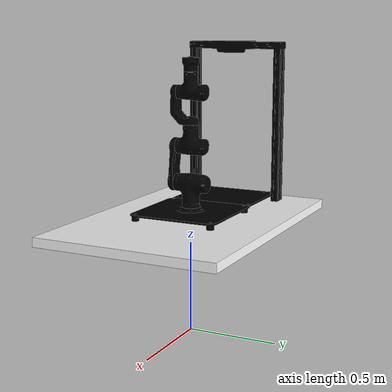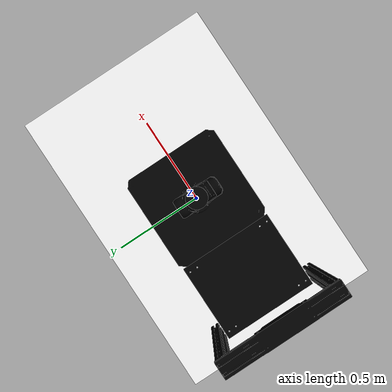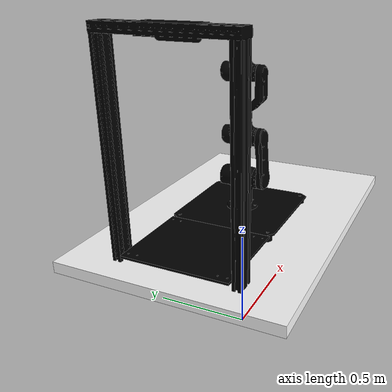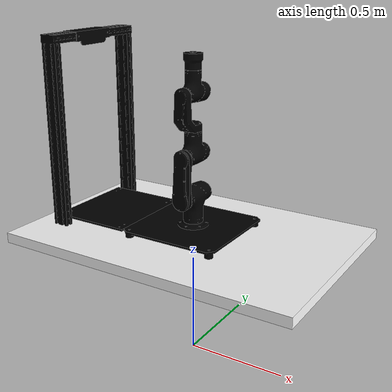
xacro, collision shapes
<?xml version="1.0"?>
<robot xmlns:xacro="http://ros.org/wiki/xacro"
       name="mara" >

  <!-- common stuff -->
  <xacro:include filename="$(find mara_description)/urdf/common.gazebo.xacro" />

  <!-- mara -->
  <xacro:include filename="$(find mara_description)/urdf/mara_nogripper.urdf.xacro" />

  <xacro:include filename="$(find mara_description)/urdf/camera_top.urdf.xacro" />

  <xacro:include filename="$(find mara_description)/urdf/table.urdf.xacro" />

  <!-- arm -->
  <xacro:mara_robot prefix="" joint_limited="false"/>
  <xacro:mara_camera_top prefix="" />
  <xacro:table prefix="" />

  <link name="world" />

  <joint name="world_to_table_joint" type="fixed">
    <origin rpy="0 0 0" xyz="0 0 0.02"/>
    <parent link="world"/>
    <child link="table"/>
  </joint>

  <joint name="table_to_base_joint" type="fixed">
    <origin rpy="0 0 0" xyz="0 0 0.65"/>
    <parent link="table"/>
    <child link="base_link"/>
  </joint>

</robot>

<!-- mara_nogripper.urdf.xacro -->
<robot xmlns:xacro="http://ros.org/wiki/xacro">

<!--
  Author: Felix Messmer
-->

  <xacro:include filename="$(find mara_description)/urdf/mara.transmission.xacro" />
  <xacro:include filename="$(find mara_description)/urdf/mara.gazebo.xacro" />

  <xacro:macro name="mara_robot"  params="prefix joint_limited">

    <link name="${prefix}base_link">
      <inertial>
        <origin rpy="0 0 0" xyz="8.625E-08 -4.6583E-06 0.03145"/>
        <mass value="7.033"/>
        <inertia ixx="0.1478344" ixy="-0.00001" ixz="0.0" iyy="0.14782335" iyz="0.0" izz="0.29471799"/>
      </inertial>
      <visual>
        <origin rpy="0 0 0" xyz="0 0 0"/>
        <geometry>
          <mesh filename="package://mara_description/meshes/H-ROS_Robot_BASE.stl" scale="0.001 0.001 0.001"/>
        </geometry>
        <material name="Gazebo/Grey">
          <color rgba="0. 0. 0. 1"/>
        </material>
      </visual>
      <collision>
        <origin rpy="0 0 0" xyz="0 0 0"/>
        <geometry>
          <mesh filename="package://mara_description/meshes/H-ROS_Robot_BASE.stl" scale="0.001 0.001 0.001"/>
        </geometry>
      </collision>
    </link>
    <gazebo reference="${prefix}base_link">
      <material>Gazebo/Grey</material>
      <selfCollide>False</selfCollide>
    </gazebo>

    <link name="${prefix}motor1_link">
      <inertial>
        <origin rpy="0 0 0" xyz="8.625E-08 -4.6583E-06 0.03145"/>
        <mass value="5.8"/>
        <inertia ixx="0.10105893" ixy="0.000211" ixz="-0.004" iyy="0.09386624" iyz="-0.01698537" izz="0.01449937"/>
      </inertial>
      <visual>
        <origin rpy="0 0 0" xyz="0 0 0"/>
        <geometry>
          <mesh filename="package://mara_description/meshes/H-ROS_Robot_mara1.stl" scale="0.001 0.001 0.001"/>
        </geometry>
        <material name="Gazebo/White">
          <color rgba="0. 0. 0. 1"/>
        </material>
      </visual>
      <collision>
        <origin rpy="0 0 0" xyz="0 0 0"/>
        <geometry>
          <mesh filename="package://mara_description/meshes/H-ROS_Robot_mara1.stl" scale="0.001 0.001 0.001"/>
        </geometry>
      </collision>
    </link>
    <gazebo reference="${prefix}motor1_link">
      <material>Gazebo/White</material>
      <selfCollide>False</selfCollide>
    </gazebo>

    <link name="${prefix}motor2_link">
      <inertial>
        <origin rpy="0 0 0" xyz="8.625E-08 -4.6583E-06 0.03145"/>
        <mass value="1.03237"/>
        <inertia ixx="0.014865226" ixy="0.0" ixz="0.0" iyy="0.01557" iyz="0.00071" izz="0.00092"/>
      </inertial>
      <visual>
        <origin rpy="0 0 0" xyz="0 0 0"/>
        <geometry>
          <mesh filename="package://mara_description/meshes/H-ROS_Robot_LINK1.stl" scale="0.001 0.001 0.001"/>
        </geometry>
        <material name="Gazebo/Black">
          <color rgba="0. 0. 0. 1"/>
        </material>
      </visual>
      <collision>
        <origin rpy="0 0 0" xyz="0 0 0"/>
        <geometry>
          <mesh filename="package://mara_description/meshes/H-ROS_Robot_LINK1.stl" scale="0.001 0.001 0.001"/>
        </geometry>
      </collision>
    </link>
    <gazebo reference="${prefix}motor2_link">
      <material>Gazebo/Black</material>
      <selfCollide>False</selfCollide>
    </gazebo>

    <link name="${prefix}motor3_link">
      <inertial>
        <origin rpy="0 0 0" xyz="8.625E-08 -4.6583E-06 0.03145"/>
        <mass value="3.8"/>
        <inertia ixx="0.04517" ixy="0.00002" ixz="0.0" iyy="0.01587" iyz="0.01444" izz="0.03303"/>
      </inertial>
      <visual>
        <origin rpy="0 0 0" xyz="0 0 0"/>
        <geometry>
          <mesh filename="package://mara_description/meshes/H-ROS_Robot_mara2.stl" scale="0.001 0.001 0.001"/>
        </geometry>
        <material name="Gazebo/White">
          <color rgba="0. 0. 0. 1"/>
        </material>
      </visual>
      <collision>
        <origin rpy="0 0 0" xyz="0 0 0"/>
        <geometry>
          <mesh filename="package://mara_description/meshes/H-ROS_Robot_mara2.stl" scale="0.001 0.001 0.001"/>
        </geometry>
      </collision>
    </link>
    <gazebo reference="${prefix}motor3_link">
      <material>Gazebo/White</material>
      <selfCollide>False</selfCollide>
    </gazebo>

    <link name="${prefix}motor4_link">
      <inertial>
        <origin rpy="0 0 0" xyz="8.625E-08 -4.6583E-06 0.03145"/>
        <mass value="1.1"/>
        <inertia ixx="0.01464" ixy="0.0" ixz="0.0" iyy="0.00895" iyz="-0.00631" izz="0.00725"/>
      </inertial>
      <visual>
        <origin rpy="0 0 0" xyz="0 0 0"/>
        <geometry>
          <mesh filename="package://mara_description/meshes/H-ROS_Robot_LINK2.stl" scale="0.001 0.001 0.001"/>
        </geometry>
        <material name="Gazebo/Black">
          <color rgba="0. 0. 0. 1"/>
        </material>
      </visual>
      <collision>
        <origin rpy="0 0 0" xyz="0 0 0"/>
        <geometry>
          <mesh filename="package://mara_description/meshes/H-ROS_Robot_LINK2.stl" scale="0.001 0.001 0.001"/>
        </geometry>
      </collision>
    </link>
    <gazebo reference="${prefix}motor4_link">
      <material>Gazebo/Black</material>
      <selfCollide>False</selfCollide>
    </gazebo>

    <link name="${prefix}motor5_link">
      <inertial>
        <origin rpy="0 0 0" xyz="8.625E-08 -4.6583E-06 0.03145"/>
        <mass value="2.9"/>
        <inertia ixx="0.03406" ixy="0.0" ixz="0.0" iyy="0.01066" iyz="0.00989" izz="0.02563"/>
      </inertial>
      <visual>
        <origin rpy="0 0 0" xyz="0 0 0"/>
        <geometry>
          <mesh filename="package://mara_description/meshes/H-ROS_Robot_mara3.stl" scale="0.001 0.001 0.001"/>
        </geometry>
        <material name="Gazebo/White">
          <color rgba="0. 0. 0. 1"/>
        </material>
      </visual>
      <collision>
        <origin rpy="0 0 0" xyz="0 0 0"/>
        <geometry>
          <mesh filename="package://mara_description/meshes/H-ROS_Robot_mara3.stl" scale="0.001 0.001 0.001"/>
        </geometry>
      </collision>
    </link>
    <gazebo reference="${prefix}motor5_link">
      <material>Gazebo/White</material>
      <selfCollide>False</selfCollide>
    </gazebo>

    <link name="${prefix}motor6_link">
      <inertial>
        <origin rpy="0 0 0" xyz="8.625E-08 -4.6583E-06 0.03145"/>
        <mass value="2.9"/>
        <inertia ixx="0.0005" ixy="0.0" ixz="0.0" iyy="0.0005" iyz="0.0000" izz="0.0003"/>
      </inertial>
      <visual>
        <origin rpy="0 0 0" xyz="0 0 0"/>
        <geometry>
          <mesh filename="package://mara_description/meshes/gripper_support.stl" scale="0.001 0.001 0.001"/>
        </geometry>
        <material name="Gazebo/Black">
          <color rgba="0. 0. 0. 1"/>
        </material>
      </visual>
      <collision>
        <origin rpy="0 0 0" xyz="0 0 0"/>
        <geometry>
          <mesh filename="package://mara_description/meshes/gripper_support.stl" scale="0.001 0.001 0.001"/>
        </geometry>
      </collision>
    </link>
    <gazebo reference="${prefix}motor6_link">
      <material>Gazebo/Black</material>
      <selfCollide>False</selfCollide>
    </gazebo>

    <link name="${prefix}ee_link">
      <visual>
        <geometry>
          <box size="0.01 0.01 0.01"/>
        </geometry>
        <material name="Gazebo/Grey">
          <color rgba="0. 0. 0. 1"/>
        </material>
      </visual>
      <collision>
        <geometry>
        <box size="0.01 0.01 0.01"/>
        </geometry>
      </collision>
    </link>
    <gazebo reference="${prefix}ee_link">
      <material>Gazebo/Blue</material>
      <selfCollide>False</selfCollide>
    </gazebo>

    <joint name="${prefix}motor1" type="revolute">
      <origin rpy="0 0 0" xyz="0 0 0.00625"/>
      <parent link="${prefix}base_link"/>
      <child link="${prefix}motor1_link"/>
      <axis xyz="0 0 -1"/>
      <limit effort="330.0" lower="-3.1416" upper="3.1416" velocity="2.16"/>
      <dynamics damping="0" friction="0"/>
    </joint>

    <joint name="${prefix}motor2" type="revolute">
      <origin rpy="0 0 0" xyz="0 -0.100499999 0.1545"/>
      <parent link="${prefix}motor1_link"/>
      <child link="${prefix}motor2_link"/>
      <axis xyz="0 -1 0"/>
      <limit effort="330.0" lower="-3.1416" upper="3.1416" velocity="2.16"/>
      <dynamics damping="0" friction="0"/>
    </joint>

    <joint name="${prefix}motor3" type="revolute">
      <origin rpy="0 0 0" xyz="0 -0.000499999 0.2"/>
      <parent link="${prefix}motor2_link"/>
      <child link="${prefix}motor3_link"/>
      <axis xyz="0 1 0"/>
      <limit effort="150" lower="-3.1416" upper="3.1416" velocity="3.15"/>
      <dynamics damping="0" friction="0"/>
    </joint>

    <joint name="${prefix}motor4" type="revolute">
      <origin rpy="0 0 0" xyz="0 0.09999 0.12999997"/>
      <parent link="${prefix}motor3_link"/>
      <child link="${prefix}motor4_link"/>
      <axis xyz="0 0 -1"/>
      <limit effort="54" lower="-3.1416" upper="3.1416" velocity="3.2"/>
      <dynamics damping="0" friction="0"/>
    </joint>

    <joint name="${prefix}motor5" type="revolute">
      <origin rpy="0 0 0" xyz="0 -0.096999 0.15906"/>
      <parent link="${prefix}motor4_link"/>
      <child link="${prefix}motor5_link"/>
      <axis xyz="0 1 0"/>
      <limit effort="54" lower="-3.1416" upper="3.1416" velocity="3.2"/>
      <dynamics damping="0" friction="0"/>
    </joint>

    <joint name="${prefix}motor6" type="revolute">
      <origin rpy="0 0 0" xyz="0 0.097 0.12"/>
      <parent link="${prefix}motor5_link"/>
      <child link="${prefix}motor6_link"/>
      <axis xyz="0 0 1"/>
      <limit effort="54" lower="-3.1416" upper="3.1416" velocity="3.2"/>
      <dynamics damping="0" friction="0"/>
    </joint>

    <joint name="${prefix}ee_link" type="fixed">
      <origin rpy="0 -1.57 0" xyz="0 0.0 0.06"/>
      <parent link="${prefix}motor6_link"/>
      <child link="${prefix}ee_link"/>
    </joint>

    <xacro:mara_transmission prefix="${prefix}" />
    <xacro:mara_gazebo prefix="${prefix}" />

    <!-- ROS ${prefix}base_link to UR 'Base' Coordinates transform -->
    <link name="${prefix}base"/>
    <joint name="${prefix}${prefix}base_link-base_fixed_joint" type="fixed">
      <!-- NOTE: this rotation is only needed as long as ${prefix}base_link itself is
                 not corrected wrt the real robot (ie: rotated over 180
                 degrees)
      -->
      <origin xyz="0 0 0" rpy="0 0 ${-pi}"/>
      <parent link="${prefix}${prefix}base_link"/>
      <child link="${prefix}base"/>
    </joint>

    <!-- Frame coincident with all-zeros TCP on UR controller -->
    <link name="${prefix}tool0"/>
    <joint name="${prefix}${prefix}motor6_link-tool0_fixed_joint" type="fixed">
      <origin xyz="0 0 0" rpy="${pi/-2.0} 0 0"/>
      <parent link="${prefix}${prefix}motor6_link"/>
      <child link="${prefix}tool0"/>
    </joint>

  </xacro:macro>
</robot>

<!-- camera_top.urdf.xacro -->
<robot xmlns:xacro="http://ros.org/wiki/xacro">

  <xacro:macro name="mara_camera_top"  params="prefix">
      <link name="mara_work_area_link">
        <inertial>
          <origin rpy="0 0 0" xyz="8.625E-08 -4.6583E-06 0.03145"/>
          <mass value="7.033"/>
          <inertia ixx="0.1478344" ixy="-0.00001" ixz="0.0" iyy="0.14782335" iyz="0.0" izz="0.29471799"/>
        </inertial>
        <visual>
          <origin rpy="0 0 0" xyz="0 0 0"/>
          <geometry>
            <mesh filename="package://mara_description/meshes/demo/AIR_WorkArea.stl" scale="0.001 0.001 0.001"/>
          </geometry>
          <material name="Gazebo/Wood">
            <color rgba="0. 0. 0. 1"/>
          </material>
        </visual>
        <collision>
          <origin rpy="0 0 0" xyz="0 0 0"/>
          <geometry>
            <mesh filename="package://mara_description/meshes/demo/AIR_WorkArea.stl" scale="0.001 0.001 0.001"/>
          </geometry>
        </collision>
      </link>
      <gazebo reference="mara_work_area_link">
        <material>Gazebo/Wood</material>
        <selfCollide>False</selfCollide>
      </gazebo>

      <link name="mara_camera_support_link">
        <inertial>
          <origin rpy="0 0 0" xyz="8.625E-08 -4.6583E-06 0.03145"/>
          <mass value="7.033"/>
          <inertia ixx="0.1478344" ixy="-0.00001" ixz="0.0" iyy="0.14782335" iyz="0.0" izz="0.29471799"/>
        </inertial>
        <visual>
          <origin rpy="0 0 0" xyz="0 0 0"/>
          <geometry>
            <mesh filename="package://mara_description/meshes/demo/top/top_camera_support.stl" scale="0.001 0.001 0.001"/>
          </geometry>
          <material name="Gazebo/Wood">
            <color rgba="0. 0. 0. 1"/>
          </material>
        </visual>
        <collision>
          <origin rpy="0 0 0" xyz="0 0 0"/>
          <geometry>
            <mesh filename="package://mara_description/meshes/demo/top/top_camera_support.stl" scale="0.001 0.001 0.001"/>
          </geometry>
        </collision>
      </link>
      <gazebo reference="mara_work_area_link">
        <material>Gazebo/Wood</material>
        <selfCollide>False</selfCollide>
      </gazebo>

      <link name="depthsensor">
        <inertial>
          <origin rpy="0 0 0" xyz="-0.12987 0 0.02947"/>
          <mass value="10.0" />
          <inertia ixx="1.38185" ixy="-0.00001" ixz="-0.05685" iyx="-0.00001" iyy="1.03177" iyz="0.0" izx="-0.05685" izy="0.00000" izz="2.27567"/>
        </inertial>
        <visual>
          <origin xyz="0 0 0" rpy="0 0 0" />
          <geometry>
            <mesh scale="0.001 0.001 0.001" filename="package://scara_e1_description/meshes/camera/SCARA_DepthSensor_SIDE.stl" />
          </geometry>
          <material name="Gazebo/Grey">
            <color rgba="1. 1. 1. 1" />
          </material>
        </visual>
      </link>
      <gazebo reference="depthsensor">
        <material>Gazebo/Grey</material>
        <selfCollide>False</selfCollide>
      </gazebo>
      <link name="camera"></link>

      <joint name="base_to_work_area_joint" type="fixed">
        <origin rpy="0 0 0" xyz="-0.450 0 0.00625"/>
        <parent link="base_link"/>
        <child link="mara_work_area_link"/>
      </joint>

      <joint name="base_to_camera_support_joint" type="fixed">
        <origin rpy="0 0 3.1416" xyz="-0.6 0 0.43125"/>
        <parent link="base_link"/>
        <child link="mara_camera_support_link"/>
      </joint>

      <joint name="camera_adapter_to_camera" type="fixed">
        <origin rpy="0 1.57 3.1416" xyz="-0.081188216 0.018 0.434548906"/>
        <parent link="mara_camera_support_link"/>
        <child link="depthsensor"/>
      </joint>

      <joint name="camera_joint" type="fixed">
        <origin xyz="0.055 0.031375 0.01" rpy="0 0 0"/>
        <parent link="depthsensor"/>
        <child link="camera"/>
      </joint>

      <gazebo reference="camera">
        <sensor name="sensor_camera" type="depth">
            <camera>
               <visualize>true</visualize>
                <horizontal_fov>1.01</horizontal_fov>
                <image>
                    <width>320</width>
                    <height>240</height>
                    <format>R8G8B8</format>
                </image>
                <clip near="0.01" far="6.0" />
                <save enabled="false" path="/tmp" />
                <depth_camera output="points" />
            </camera>
            <plugin name="depthsensor" filename="libgazebo_ros_depth_camera.so">
                <alwaysOn>1</alwaysOn>
                <updateRate>10.0</updateRate>
                <visualize>true</visualize>
                <imageTopicName>/mara/rgb/image_raw</imageTopicName>
                <pointCloudTopicName>/mara/depth/points</pointCloudTopicName>
                <cameraInfoTopicName>/mara/rgb/camera_info</cameraInfoTopicName>
                <cameraName>/mara</cameraName>
                <depthImageTopicName>/mara/depth/image_raw</depthImageTopicName>
                <depthImageCameraInfoTopicName>/mara/depth/camera_info</depthImageCameraInfoTopicName>
                <frameName>/camera</frameName>
                <pointCloudCutoff>0.001</pointCloudCutoff>
                <distortionK1>0.00000001</distortionK1>
                <distortionK2>0.00000001</distortionK2>
                <distortionK3>0.00000001</distortionK3>
                <distortionT1>0.00000001</distortionT1>
                <distortionT2>0.00000001</distortionT2>
            </plugin>
            <always_on>true</always_on>
            <update_rate>10.0</update_rate>
          </sensor>
   </gazebo>
  </xacro:macro>

</robot>

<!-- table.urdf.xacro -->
<robot xmlns:xacro="http://ros.org/wiki/xacro">

  <xacro:macro name="table"  params="prefix">
    <link name="table">
      <contact>
        <lateral_friction value="1.0"/>
      </contact>
      <inertial>
        <origin rpy="0 0 0" xyz="0 0 0"/>
         <mass value=".0"/>
         <inertia ixx="1" ixy="0" ixz="0" iyy="1" iyz="0" izz="1"/>
      </inertial>
      <visual>
        <origin rpy="0 0 0" xyz="0 0 0.6"/>
        <geometry>
  				<mesh filename="package://mara_description/urdf/table.obj" scale="1.5 1 0.05"/>
        </geometry>
         <material name="white">
          <color rgba="1 1 1 1"/>
        </material>
      </visual>
      <collision>
        <origin rpy="0 0 0" xyz="0 0 0.6"/>
        <geometry>
  	 	<box size="1.5 1 0.05"/>
        </geometry>
      </collision>
  	<visual>
        <origin rpy="0 0 0" xyz="-0.65 -0.4 0.29"/>
        <geometry>
  	    <mesh filename="package://mara_description/urdf/table.obj" scale="0.1 0.1 0.58"/>
        </geometry>
  	  <material name="framemat0"/>
      </visual>
      <visual>
        <origin rpy="0 0 0" xyz="-0.65 0.4 0.29"/>
        <geometry>
          <mesh filename="package://mara_description/urdf/table.obj" scale="0.1 0.1 0.58"/>
        </geometry>
  	  <material name="framemat0"/>
  	  </visual>
      <visual>
        <origin rpy="0 0 0" xyz="0.65 -0.4 0.29"/>
        <geometry>
          <mesh filename="package://mara_description/urdf/table.obj" scale="0.1 0.1 0.58"/>
        </geometry>
  	  <material name="framemat0"/>
  	  </visual>
      <visual>
        <origin rpy="0 0 0" xyz="0.65 0.4 0.29"/>
        <geometry>
          <mesh filename="package://mara_description/urdf/table.obj" scale="0.1 0.1 0.58"/>
        </geometry>
      </visual>
    </link>
  </xacro:macro>
</robot>
